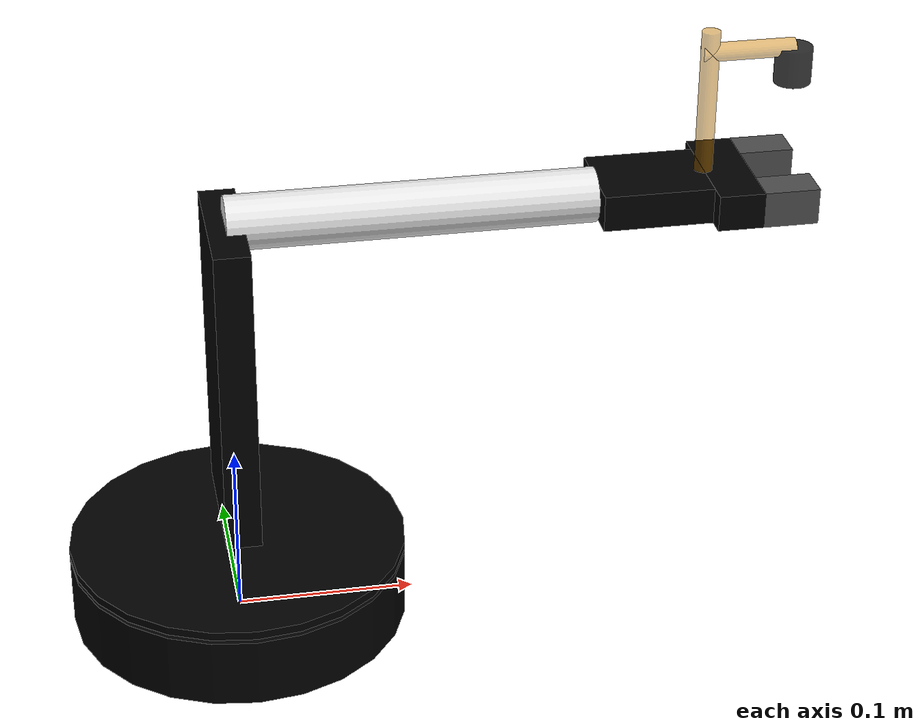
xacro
<robot name = "arm" xmlns:xacro = "http://wiki.ros.org/xacro" >

        <xacro:include filename = "head.urdf.xacro" />
        <xacro:include filename = "arm.urdf.xacro" />
        <xacro:include filename = "arm_camera_sim.urdf.xacro" />

        <xacro:include filename = "camera_config.urdf.xacro" />
    </robot>

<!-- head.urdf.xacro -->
<robot name="base" xmlns:xacro="http://wiki.ros.org/xacro">
    <xacro:macro name="sphere_inertial_matrix" params="m r">
        <inertial>
            <mass value="${m}" />
            <inertia ixx="${2*m*r*r/5}" ixy="0" ixz="0"
                iyy="${2*m*r*r/5}" iyz="0"
                izz="${2*m*r*r/5}" />
        </inertial>
    </xacro:macro>

    <xacro:macro name="cylinder_inertial_matrix" params="m r h">
        <inertial>
            <mass value="${m}" />
            <inertia ixx="${m*(3*r*r+h*h)/12}" ixy = "0" ixz = "0"
                iyy="${m*(3*r*r+h*h)/12}" iyz = "0"
                izz="${m*r*r/2}" />
        </inertial>
    </xacro:macro>

    <xacro:macro name="Box_inertial_matrix" params="m l w h">
       <inertial>
               <mass value="${m}" />
               <inertia ixx="${m*(h*h + l*l)/12}" ixy = "0" ixz = "0"
                   iyy="${m*(w*w + l*l)/12}" iyz= "0"
                   izz="${m*(w*w + h*h)/12}" />
       </inertial>
   </xacro:macro>
</robot>

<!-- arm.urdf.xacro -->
<robot name="arm" xmlns:xacro="http://wiki.ros.org/xacro">
	<link name="base_link">
		<visual>
			<geometry>
				<cylinder length="0.04" radius="0.095" />
			</geometry>
			<material name="black">
				<color rgba="0 0 0 1" />
			</material>
			<origin xyz="0 0 0.02" rpy="0 0 0" />
		</visual>
		<collision>
			<geometry>
				<cylinder length="0.04" radius="0.095" />
			</geometry>
		</collision>
		<xacro:cylinder_inertial_matrix m = "2.5" r = "0.095" h = "0.04"/>
	</link>
	<gazebo reference = "base_link">
        <material> Gazebo/Grey</material>
    </gazebo>

	<link name="turret">
		<visual>
			<geometry>
				<cylinder length="0.005" radius="0.095" />
			</geometry>
			<material name="black" />
		</visual>
		<collision>
			<geometry>
				<cylinder length="0.005" radius="0.095" />
			</geometry>
		</collision>
		<xacro:cylinder_inertial_matrix m = "0.5" r = "0.095" h = "0.005"/>
	</link>

	<link name="upperarm">
		<visual>
			<geometry>
				<box size="0.02 0.08 0.18" />
			</geometry>
			<material name="black" />
			<origin xyz="0 0 0.09" rpy="0 0 0" />
		</visual>
		<collision>
			<geometry>
				<box size="0.02 0.08 0.18" />
			</geometry>
		</collision>
		<xacro:Box_inertial_matrix m = "0.1" l = "0.02" w = "0.08" h = "0.18" />
	</link>

	<link name="forearm" >
		<visual>
			<geometry>
				<cylinder length="0.20" radius="0.015" />
			</geometry>
			<material name="silver" >
				<color rgba="0.9 0.9 0.9 1" />
			</material>
			<origin xyz="0 0 0.10" rpy="0 0 0" />
		</visual>
		<collision>
			<geometry>
				<cylinder length="0.20" radius="0.015" />
			</geometry>
		</collision>
		<xacro:cylinder_inertial_matrix m = "0.05" r = "0.015" h = "0.20"/>
	</link>

	<link name="wrist">
		<visual>
			<geometry>
				<box size="0.02 0.05 0.06" />
			</geometry>
			<material name="black" />
			<origin xyz="0 0 0.03" rpy="0 0 0" />
		</visual>
		<collision>
			<geometry>
				<box size="0.02 0.05 0.06" />
			</geometry>
		</collision>
		<xacro:Box_inertial_matrix m = "0.05" l = "0.02" w = "0.05" h = "0.06" />
	</link>
	<link name="hand">
		<visual>
			<geometry>
				<box size="0.02 0.07 0.025" />
			</geometry>
			<material name="black" />
			<origin xyz="0 0 0.0125" rpy="0 0 0" />
		</visual>
		<collision>
			<geometry>
				<box size="0.02 0.07 0.025" />
			</geometry>
		</collision>
		<xacro:Box_inertial_matrix m = "0.05" l = "0.02" w = "0.07" h = "0.025" />
	</link>
	<link name="gripper_left">
		<visual>
			<geometry>
				<box size="0.02 0.02 0.03" />
			</geometry>
			<origin xyz="0 0 0.015" rpy="0 0 0" />
			<material name="gray" >
				<color rgba="0.3 0.3 0.3 1" />
			</material>
		</visual>
		<collision>
			<geometry>
				<box size="0.02 0.02 0.03" />
			</geometry>
			<origin xyz="0 0 0.015" rpy="0 0 0" />
		</collision>
		<xacro:Box_inertial_matrix m = "0.005" l = "0.02" w = "0.02" h = "0.03" />
	</link>
	<link name="gripper_right">
		<visual>
			<geometry>
				<box size="0.02 0.02 0.03" />
			</geometry>
			<origin xyz="0 0 0.015" rpy="0 0 0" />
			<material name="gray" />
		</visual>
		<collision>
			<geometry>
				<box size="0.02 0.02 0.03" />
			</geometry>
			<origin xyz="0 0 0.015" rpy="0 0 0" />
		</collision>
		<xacro:Box_inertial_matrix m = "0.005" l = "0.02" w = "0.02" h = "0.03" />
	</link>
	<joint name="base_link2turret" type="continuous">
		<parent link="base_link" />
		<child link="turret" />
		<origin xyz="0 0 0.045" rpy="0 0 0" />
		<axis xyz="0 0 -1" />
	</joint>
	<joint name="turret2upperarm" type="continuous">
		<parent link="turret" />
		<child link="upperarm" />
		<origin xyz="0 0 0.02" rpy="0 0 0" />
		<axis xyz="0 -1 0" />
	</joint>
	<joint name="upperarm2forearm" type="continuous">
		<parent link="upperarm" />
		<child link="forearm" />
		<origin xyz="0 0 0.18" rpy="0 1.5708 0" />
		<axis xyz="0 1 0" />
	</joint>
	<joint name="forearm2wrist" type="continuous">
		<parent link="forearm" />
		<child link="wrist" />
		<origin xyz="0 0 0.20" rpy="0 0 0" />
		<axis xyz="0 -1 0" />
	</joint>
	<joint name="wrist2hand" type="continuous">
		<parent link="wrist" />
		<child link="hand" />
		<origin xyz="0 0 0.06" rpy="0 0 0" />
		<axis xyz="0 0 1" />
	</joint>
	<joint name="gripper_left2hand" type="prismatic">
		<parent link="hand" />
		<child link="gripper_left" />
		<origin xyz="0 0.025 0.025" rpy="0 0 0" />
		<limit effort="1000.0" lower="-0.02" upper="0.02" velocity="0.5" />
		<axis xyz="0 -1 0" />
	</joint>
	<joint name="gripper_right2hand" type="prismatic">
		<parent link="hand" />
		<child link="gripper_right" />
		<origin xyz="0 -0.025 0.025" rpy="0 0 0" />
		<limit effort="1000.0" lower="0.02" upper="-0.02" velocity="0.5" />
		<axis xyz="0 1 0" />
                <mimic joint="gripper_left2hand" multiplier="1" offset="0"/>
	</joint>
</robot>

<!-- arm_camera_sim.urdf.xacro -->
<robot name = "arm" xmlns:xacro = "http://wiki.ros.org/xacro" >

	<link name = "bracket2camera_1">
        <visual>
            <geometry>
                <cylinder radius = "0.005" length = "0.1" />
            </geometry>
            <material name = "grey">
                <color rgba = "0.8 0.5 0.0 0.5" />
            </material>
        </visual>
        <collision>
			<geometry>
				<box size="0.02 0.02 0.03" />
			</geometry>
			<origin xyz="0 0 0.015" rpy="0 0 0" />
		</collision>
		<xacro:cylinder_inertial_matrix m = "0.1" r = "0.005" h = "0.08"/>
    </link>

	<link name = "bracket2camera_2">
        <visual>
            <geometry>
                <cylinder radius = "0.005" length = "0.05" />
            </geometry>
            <material name = "grey">
                <color rgba = "0.8 0.5 0.0 0.5" />
            </material>
        </visual>
        <collision>
			<geometry>
				<box size="0.02 0.02 0.03" />
			</geometry>
			<origin xyz="0 0 0.015" rpy="0 0 0" />
		</collision>
		<xacro:cylinder_inertial_matrix m = "0.05" r = "0.005" h = "0.04"/>
    </link>

	<link name = "camera">
		<visual>
			 <geometry>
				 <cylinder radius = "0.01" length = "0.02" />
			 </geometry>
			 <material name = "black">
				 <color rgba = "0 0 0 0.8" />
			 </material>
		</visual>
        <collision>
			<geometry>
				<box size="0.02 0.02 0.03" />
			</geometry>
			<origin xyz="0 0 0.015" rpy="0 0 0" />
		</collision>
		<xacro:cylinder_inertial_matrix m = "0.01" r = "0.01" h = "0.02"/>
 	</link>

     <joint name = "bracket2camera_1" type = "fixed">
        <parent link = "hand" />
        <child link = "bracket2camera_1" />
        <origin xyz = "-0.04 0 0" rpy = "0 1.57 0" />
		<axis xyz="0 0 0" />
    </joint>
	<joint name = "bracket2camera_2" type = "fixed">
        <parent link = "bracket2camera_1" />
        <child link = "bracket2camera_2" />
        <origin xyz = "-0.021 0 -0.038" rpy = "0 1.57 0" />
		<axis xyz="0 1 0" />
		<limit effort= "10" lower="0.01" upper="-0.01" velocity="0.05" />
    </joint>
    <joint name = "camera" type = "fixed">
        <parent link = "bracket2camera_2"/>
        <child link = "camera" />
        <origin xyz = "-0.01 0 -0.025" rpy = "0 1.57 0" />
		<axis xyz="0 1 0" />
		<limit effort="10" lower="0.01" upper="-0.01" velocity="0.05" />
    </joint>

</robot>
